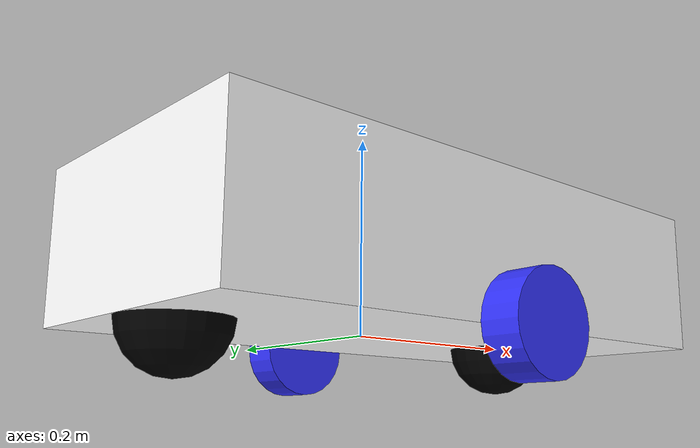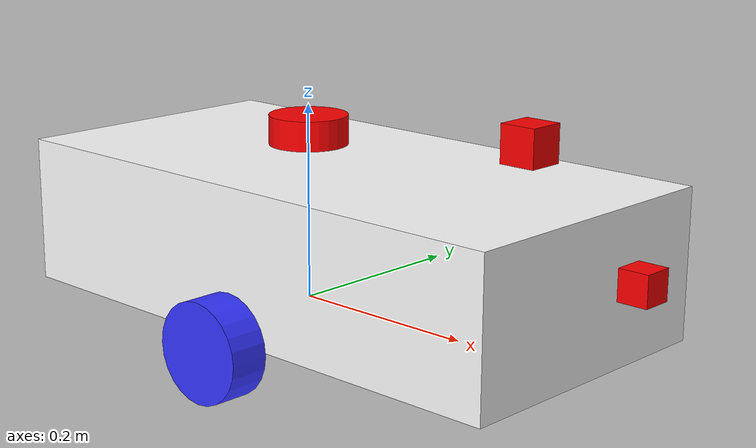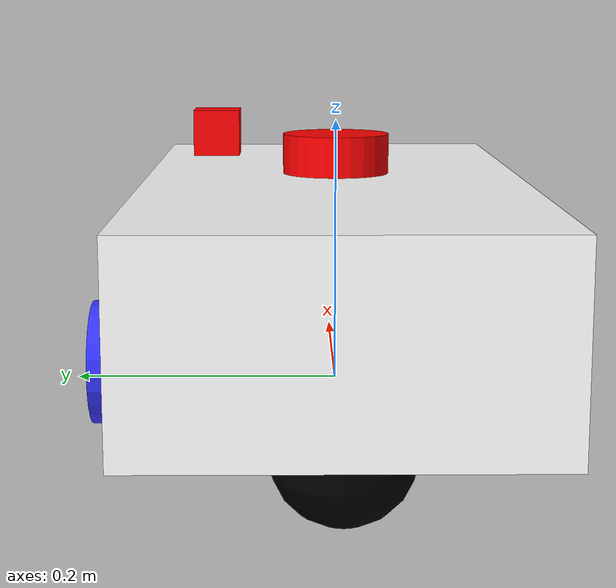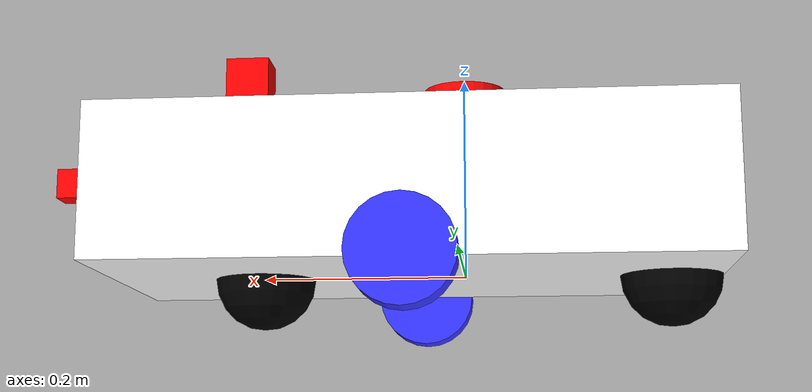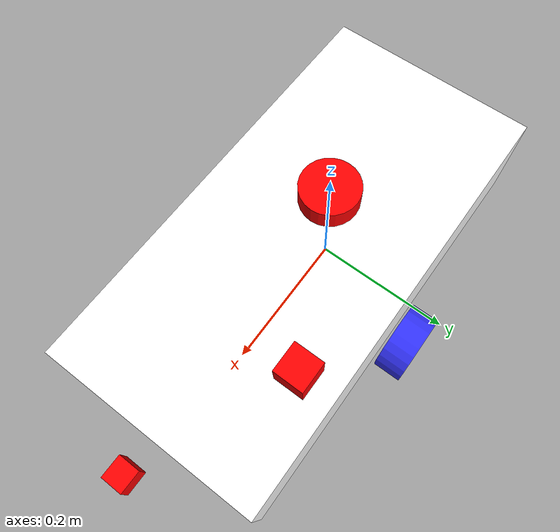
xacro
<?xml version="1.0"?>

<robot xmlns:xacro="http://www.ros.org/wiki/xacro"  name="mouse robot">

    <xacro:include filename="robot_core.xacro" />

    <xacro:include filename="gazebo_control.xacro" />
    <xacro:include filename="lazers.xacro" />
    <xacro:include filename="infrared.xacro" />
    <xacro:include filename="imu.xacro" />

</robot>

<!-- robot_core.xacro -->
<!-- source: https://articulatedrobotics.xyz/mobile-robot-2-concept-urdf/ -->

<robot xmlns:xacro="http://www.ros.org/wiki/xacro" >

    <xacro:include filename="inertial_macros.xacro"/>

    <material name="white">
        <color rgba="1 1 1 1" />
    </material>

    <material name="orange">
        <color rgba="1 0.3 0.1 1"/>
    </material>

    <material name="blue">
        <color rgba="0.2 0.2 1 1"/>
    </material>

    <material name="black">
        <color rgba="0 0 0 1"/>
    </material>

    <material name="red">
        <color rgba="1 0 0 1"/>
    </material>

    <!-- BASE LINK -->

    <link name="base_link">

    </link>

    <!-- CHASSIS LINK -->

    <joint name="chassis_joint" type="fixed">
        <parent link="base_link"/>
        <child link="chassis"/>
        <origin xyz="-0.1 0 0"/>
    </joint>

    <link name="chassis">
        <visual>
            <origin xyz="0.15 0 0.075"/>
            <geometry>
             <!-- below size dimensions are in meters -->
                <box size="0.6 0.3 0.15"/>
            </geometry>
            <material name="white"/>
        </visual>
        <collision>
            <origin xyz="0.15 0 0.075"/>
            <geometry>
                <box size="0.6 0.3 0.15"/>
            </geometry>
        </collision>
        <xacro:inertial_box mass="0.5" x="0.6" y="0.3" z="0.15"> <!-- note: mass is in kilograms-->
            <origin xyz="0.15 0 0.075" rpy="0 0 0"/>
        </xacro:inertial_box>
    </link>

    <gazebo reference="chassis">
        <material>Gazebo/White</material>
    </gazebo>

    <!-- LEFT WHEEL LINK -->
    <!-- continuous joints, as wheels should be able to rotate continuously-->

    <joint name="left_wheel_joint" type="continuous">
        <parent link="chassis"/> <!-- making the parent chassis to center the wheel-->
        <child link="left_wheel"/>
         <!-- Rotating the cylinder so that the cylinder is oriented along the y - axis (left to right)
        In ROS the default is oriented along the z axis. Need to do a quarter turn (-pi/2 radians) -->
        <origin xyz="0.15 0.175 0" rpy="-${pi/2} 0 0" />
        <!-- Here we have -pi/2 roll (rotation front to back), and zero pitch (side to side rotation), and zero yaw (vertical rotation)-->
        <axis xyz="0 0 1"/>
        <!--Wheel should point outwards, zero in x and y, and 1 in z-->
    </joint>

    <link name="left_wheel">
        <visual>
            <geometry>
                <cylinder radius="0.05" length="0.04"/>
            </geometry>
            <material name="blue"/>
        </visual>
        <collision>
            <geometry>
                <cylinder radius="0.05" length="0.04"/>
            </geometry>
        </collision>
        <xacro:inertial_cylinder mass="0.1" length="0.04" radius="0.05">
            <origin xyz="0 0 0" rpy="0 0 0"/>
        </xacro:inertial_cylinder>
    </link>

    <gazebo reference="left_wheel">
        <material>Gazebo/Blue</material>
    </gazebo>

    <!-- RIGHT WHEEL LINK -->

    <joint name="right_wheel_joint" type="continuous">
        <parent link="chassis"/> <!-- making the parent chassis to center the wheel-->
        <child link="right_wheel"/>
        <origin xyz="0.15 -0.175 0" rpy="${pi/2} 0 0" />
        <axis xyz="0 0 -1"/>
    </joint>

    <link name="right_wheel">
        <visual>
            <geometry>
                <cylinder radius="0.05" length="0.04"/>
            </geometry>
            <material name="blue"/>
        </visual>
        <collision>
            <geometry>
                <cylinder radius="0.05" length="0.04"/>
            </geometry>
        </collision>
        <xacro:inertial_cylinder mass="0.1" length="0.04" radius="0.05">
            <origin xyz="0 0 0" rpy="0 0 0"/>
        </xacro:inertial_cylinder>
    </link>

    <gazebo reference="right_wheel">
        <material>Gazebo/Blue</material>
    </gazebo>

    <!-- CASTER WHEEL LINK -->

    <joint name="caster_wheel_joint" type="fixed">
        <parent link="chassis"/>
        <child link="caster_wheel"/>
        <origin xyz="0.3 0 0"/>
    </joint>

    <link name="caster_wheel">
        <visual>
            <geometry>
                <sphere radius="0.05"/>
            </geometry>
            <material name="black"/>
        </visual>
        <collision>
            <geometry>
                <sphere radius="0.05"/>
            </geometry>
        </collision>
        <xacro:inertial_sphere mass="0.1" radius="0.05">
            <origin xyz="0 0 0" rpy="0 0 0"/>
        </xacro:inertial_sphere>
    </link>

    <gazebo reference="caster_wheel">
        <material>Gazebo/Black</material>
        <mu1 value="0.001"/>
        <mu2 value="0.001"/>
    </gazebo>

     <!-- CASTER WHEEL LINK 2 -->

    <joint name="caster_wheel_joint_2" type="fixed">
        <parent link="chassis"/>
        <child link="caster_wheel_2"/>
        <origin xyz="-0.1 0 0"/>
    </joint>

    <link name="caster_wheel_2">
        <visual>
            <geometry>
                <sphere radius="0.05"/>
            </geometry>
            <material name="black"/>
        </visual>
        <collision>
            <geometry>
                <sphere radius="0.05"/>
            </geometry>
        </collision>
        <xacro:inertial_sphere mass="0.1" radius="0.05">
            <origin xyz="0 0 0" rpy="0 0 0"/>
        </xacro:inertial_sphere>
    </link>

    <gazebo reference="caster_wheel_2">
        <material>Gazebo/Black</material>
        <mu1 value="0.001"/>
        <mu2 value="0.001"/>
    </gazebo>

</robot>

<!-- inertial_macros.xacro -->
<!-- Source: https://github.com/joshnewans/articubot_one/blob/d5aa5e9bc9039073c0d8fd7fe426e170be79c087/description/inertial_macros.xacro-->
<robot xmlns:xacro="http://www.ros.org/wiki/xacro" >

    <!-- Specify some standard inertial calculations https://en.wikipedia.org/wiki/List_of_moments_of_inertia -->
    <!-- These make use of xacro's mathematical functionality  -->

    <xacro:macro name="inertial_sphere" params="mass radius *origin">
        <inertial>
            <xacro:insert_block name="origin"/>
            <mass value="${mass}" />
            <inertia ixx="${(2/5) * mass * (radius*radius)}" ixy="0.0" ixz="0.0"
                    iyy="${(2/5) * mass * (radius*radius)}" iyz="0.0"
                    izz="${(2/5) * mass * (radius*radius)}" />
        </inertial>
    </xacro:macro>

    <xacro:macro name="inertial_box" params="mass x y z *origin">
        <inertial>
            <xacro:insert_block name="origin"/>
            <mass value="${mass}" />
            <inertia ixx="${(1/12) * mass * (y*y+z*z)}" ixy="0.0" ixz="0.0"
                    iyy="${(1/12) * mass * (x*x+z*z)}" iyz="0.0"
                    izz="${(1/12) * mass * (x*x+y*y)}" />
        </inertial>
    </xacro:macro>

    <xacro:macro name="inertial_cylinder" params="mass length radius *origin">
        <inertial>
            <xacro:insert_block name="origin"/>
            <mass value="${mass}" />
            <inertia ixx="${(1/12) * mass * (3*radius*radius + length*length)}" ixy="0.0" ixz="0.0"
                    iyy="${(1/12) * mass * (3*radius*radius + length*length)}" iyz="0.0"
                    izz="${(1/2) * mass * (radius*radius)}" />
        </inertial>
    </xacro:macro>

</robot>

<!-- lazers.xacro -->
<robot xmlns:xacro="http://www.ros.org/wiki/xacro" >
 <!-- source: https://articulatedrobotics.xyz/mobile-robot-8-lidar/ -->
    <joint name="laser_joint" type="fixed">
        <parent link="chassis"/>
        <child link="laser_frame"/>
        <origin xyz="0.1 0 0.175" rpy="0 0 0"/>
    </joint>

    <link name="laser_frame">
        <visual>
            <geometry>
                <cylinder radius="0.04" length="0.03"/>
            </geometry>
            <material name="red"/>
        </visual>
        <collision>
            <geometry>
                <cylinder radius="0.05" length="0.04"/>
            </geometry>
        </collision>
        <xacro:inertial_cylinder mass="0.1" length="0.04" radius="0.05">
            <origin xyz="0 0 0" rpy="0 0 0"/>
        </xacro:inertial_cylinder>
    </link>

    <gazebo reference="laser_frame">
        <material>Gazebo/Red</material>

        <sensor name="laser" type="ray">
            <pose> 0 0 0 0 0 0 </pose>
            <visualize>true</visualize>
            <update_rate>10</update_rate>
            <ray>
                <scan>
                    <horizontal>
                        <samples>360</samples>
                        <min_angle>-3.14</min_angle>
                        <max_angle>3.14</max_angle>
                    </horizontal>
                </scan>
                <range>
                    <!-- TODO: check what the range should be-->
                    <min>0.3</min>
                    <max>12</max>
                </range>
            </ray>
            <!-- ros plugin that gets a gazebo ray sensor, and gets it to communicate with ROS-->
            <plugin name="laser_controller" filename="libgazebo_ros_ray_sensor.so">
                <ros>
                    <argument>~/out:=scan</argument>
                </ros>
                <output_type>sensor_msgs/LaserScan</output_type>
                <frame_name>laser_frame</frame_name>
            </plugin>
        </sensor>
    </gazebo>

</robot>

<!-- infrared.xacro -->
<robot xmlns:xacro="http://www.ros.org/wiki/xacro" >
<!-- source: https://medium.com/teamarimac/integrating-sonar-and-ir-sensor-plugin-to-robot-model-in-gazebo-with-ros-656fd9452607-->
    <joint name="ir_front_joint" type="fixed">
        <axis xyz="0 1 0" />
        <!--  recall: rpy = roll, pitch, yaw -->
        <origin rpy="0 0 0" xyz="0.5 0 0.1" />
        <parent link="chassis"/>
        <child link="base_ir_front"/>
    </joint>

    <link name="base_ir_front">
     <visual>
            <geometry>
                <box size="0.03 0.03 0.03"/>
            </geometry>
            <material name="red"/>
        </visual>
        <collision>
            <origin xyz="0 0 0" rpy="0 0 0"/>
            <geometry>
                <box size="0.03 0.03 0.03"/>
            </geometry>
        </collision>
        <inertial>
            <mass value="1e-5" />
            <origin xyz="0 0 0" rpy="0 0 0"/>
            <inertia ixx="1e-6" ixy="0" ixz="0" iyy="1e-6" iyz="0" izz="1e-6" />
        </inertial>
    </link>
</robot>

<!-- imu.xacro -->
<robot xmlns:xacro="http://www.ros.org/wiki/xacro" >
<!--source: https://classic.gazebosim.org/tutorials?tut=ros_gzplugins and
https://answers.ros.org/question/48983/how-to-add-pressure-sensors-gyroscopes-and-accelerometers-to-an-urdf-model/-->
    <joint name="IMU_joint" type="fixed">
        <parent link="base_link"/>
        <child link="IMU_link"/>
        <origin xyz="0.2 0.1 0.175"/>
    </joint>

    <link name="IMU_link">
    <visual>
        <geometry>
                <box size="0.04 0.04 0.04"/>
        </geometry>
        <material name="red"/>
    </visual>
    <collision>
        <origin rpy="0 0 0" xyz="0 0 0"/>
            <geometry>
            <box size=".04 .04 .04"/>
            </geometry>
    </collision>
        <inertial>
            <mass value="0.001"/>
            <origin rpy="0 0 0" xyz="0 0 0"/>
            <inertia ixx="0.0001" ixy="0" ixz="0" iyy="0.000001" iyz="0" izz="0.0001"/>
        </inertial>
    </link>
    <gazebo>
        <plugin name="gazebo_ros_imu" filename="libgazebo_ros_imu.so">
            <alwaysOn>true</alwaysOn>
            <bodyName>IMU_link</bodyName>
            <topicName>imu</topicName>
            <serviceName>imu_service</serviceName>
            <gaussianNoise>0.0</gaussianNoise>
            <updateRate>20.0</updateRate>
        </plugin>
        <material>Gazebo/Red</material>
    </gazebo>
</robot>
